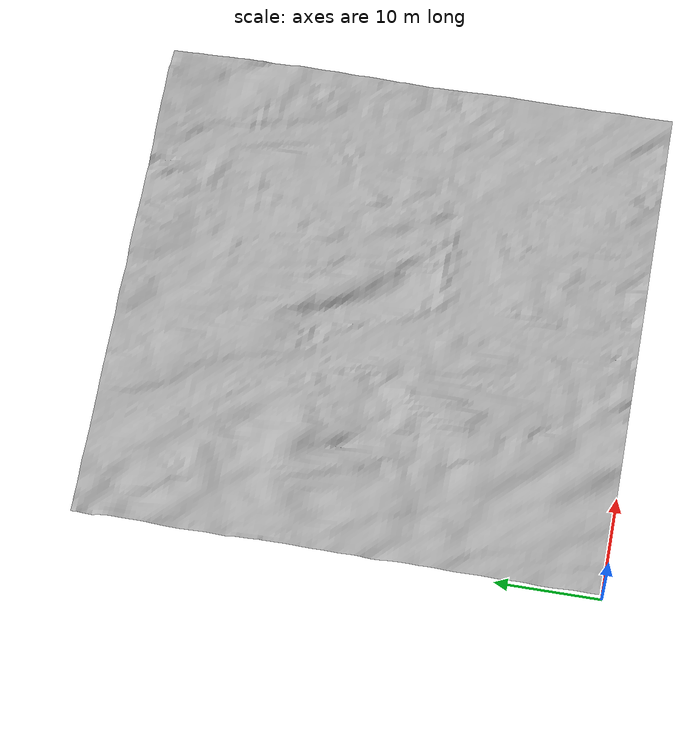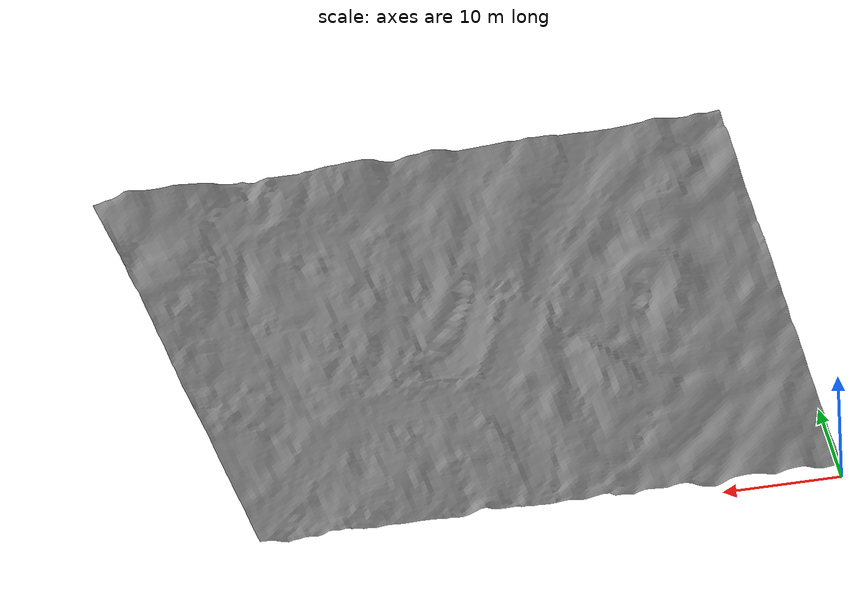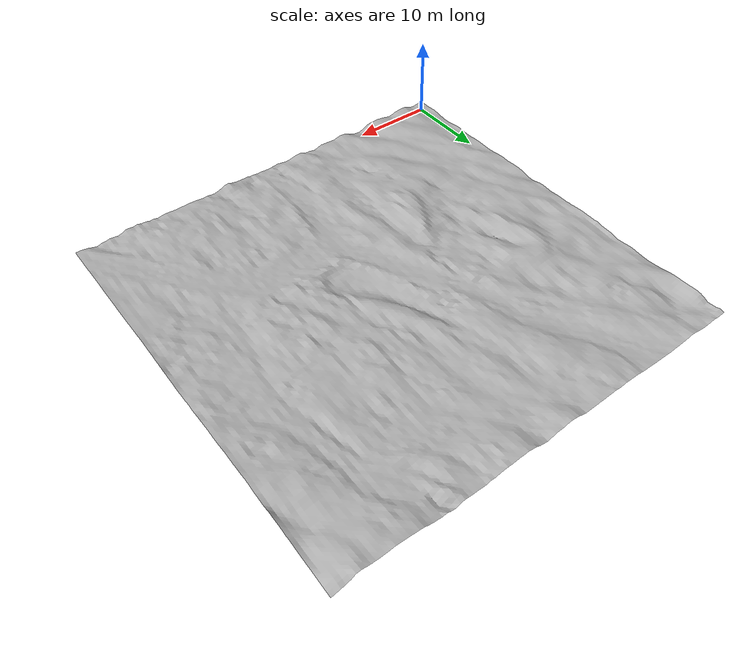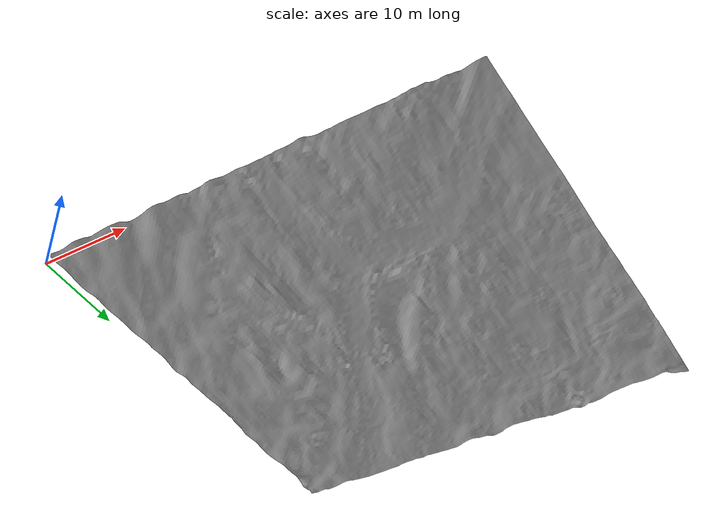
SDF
<?xml version="1.0" ?>
<sdf version="1.4">
    <model name="terrain_50mX50m:25mmX25mm">
        <static>true</static>
        <link name="terrain1">
            <pose>0 0 0 0 0 0</pose>
            <collision name="terrain1_collision">
                <geometry>
                    <mesh>
                        <uri>model://terrain_50mX50m:25mmX25mm/meshes/terrain1.dae</uri>
                    </mesh>
                </geometry>
            </collision>
            <visual name="terrain1_visual">
                <geometry>
                    <mesh>
                        <uri>model://terrain_50mX50m:25mmX25mm/meshes/terrain1.dae</uri>
                    </mesh>
                </geometry>
                <material>
                    <script>
                        <uri>model://terrain_50mX50m:25mmX25mm/materials/scripts</uri>
                        <uri>model://terrain_50mX50m:25mmX25mm/materials/textures</uri>
                        <name>terrain/terrain1</name>
                    </script>
                </material>
            </visual>
        </link>
    </model>
</sdf>
